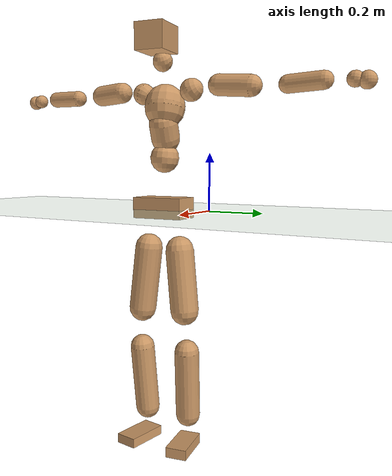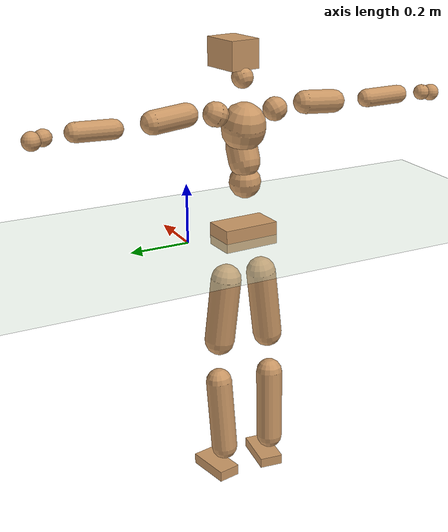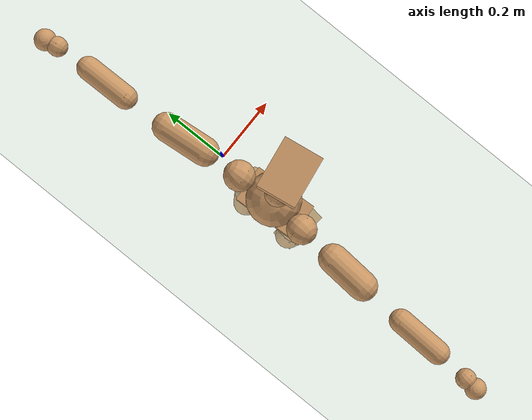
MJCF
<mujoco model="humanoid">
  <compiler coordinate="local" angle="radian"/>
  <default>
    <joint damping="0.0" armature="0.01" stiffness="0.0" limited="true"/>
    <geom conaffinity="1" condim="3" contype="7" margin="0.001" rgba="0.8 0.6 .4 1"/>
  </default>
  <asset>
    <texture type="skybox" builtin="gradient" rgb1=".4 .5 .6" rgb2="0 0 0" width="100" height="100"/>
    <texture builtin="flat" height="1278" mark="cross" markrgb="1 1 1" name="texgeom" random="0.01" rgb1="0.8 0.6 0.4" rgb2="0.8 0.6 0.4" type="cube" width="127"/>
    <texture builtin="checker" height="100" name="texplane" rgb1="0 0 0" rgb2="0.8 0.8 0.8" type="2d" width="100"/>
    <material name="MatPlane" reflectance="0.5" shininess="1" specular="1" texrepeat="60 60" texture="texplane"/>
    <material name="geom" texture="texgeom" texuniform="true"/>
  </asset>
  <worldbody>
    <light cutoff="100" diffuse="1 1 1" dir="-0 0 -1.3" directional="true" exponent="1" pos="0 0 1.3" specular=".1 .1 .1"/>
    <geom conaffinity="1" condim="3" name="floor" pos="0 0 0" rgba="0.8 0.9 0.8 1" size="100 100 .2" type="plane" material="MatPlane"/>
    <body name="Pelvis" pos="-0.0035 -0.1997 0.0163">
      <freejoint name="Pelvis"/>
      <geom type="box" contype="1" conaffinity="1" density="5359.375354" pos="-0.0058 -0.0003 -0.0116" size="0.0557 0.0963 0.0381" quat="0.9996 0.0000 0.0000 0.0287" name="Pelvis"/>
      <body name="L_Hip" pos="-0.0116 0.0591 -0.0846">
        <joint name="L_Hip_x" type="hinge" pos="0 0 0" axis="1 0 0" stiffness="1600" damping="160" armature="0.02" range="-180.0000 180.0000"/>
        <joint name="L_Hip_y" type="hinge" pos="0 0 0" axis="0 1 0" stiffness="1600" damping="160" armature="0.02" range="-180.0000 180.0000"/>
        <joint name="L_Hip_z" type="hinge" pos="0 0 0" axis="0 0 1" stiffness="1600" damping="160" armature="0.02" range="-180.0000 180.0000"/>
        <geom type="capsule" contype="1" conaffinity="1" density="2040.816327" size="0.052" fromto="0.0020 0.0090 -0.0815 0.0073 0.0338 -0.3064" name="L_Hip"/>
        <body name="L_Knee" pos="0.0093 0.0428 -0.3879">
          <joint name="L_Knee_x" type="hinge" pos="0 0 0" axis="1 0 0" stiffness="1600" damping="160" armature="0.02" range="-180.0000 180.0000"/>
          <joint name="L_Knee_y" type="hinge" pos="0 0 0" axis="0 1 0" stiffness="1600" damping="160" armature="0.02" range="-180.0000 180.0000"/>
          <joint name="L_Knee_z" type="hinge" pos="0 0 0" axis="0 0 1" stiffness="1600" damping="160" armature="0.02" range="-180.0000 180.0000"/>
          <geom type="capsule" contype="1" conaffinity="1" density="1234.567901" size="0.0456" fromto="-0.0069 -0.0021 -0.0753 -0.0299 -0.0094 -0.3280" name="L_Knee"/>
          <body name="L_Ankle" pos="-0.0367 -0.0115 -0.4033">
            <joint name="L_Ankle_x" type="hinge" pos="0 0 0" axis="1 0 0" stiffness="1600" damping="160" armature="0.02" range="-180.0000 180.0000"/>
            <joint name="L_Ankle_y" type="hinge" pos="0 0 0" axis="0 1 0" stiffness="1600" damping="160" armature="0.02" range="-180.0000 180.0000"/>
            <joint name="L_Ankle_z" type="hinge" pos="0 0 0" axis="0 0 1" stiffness="1600" damping="160" armature="0.02" range="-180.0000 180.0000"/>
            <geom type="box" contype="1" conaffinity="1" density="999.999994" pos="0.0566 0.0108 -0.0278" size="0.0787 0.0394 0.0189" quat="0.9956 0.0000 0.0000 0.0941" name="L_Ankle"/>
            <body name="L_Toe" pos="0.1132 0.0216 -0.0556">
              <joint name="L_Toe_x" type="hinge" pos="0 0 0" axis="1 0 0" stiffness="1000" damping="100" armature="0.02" range="-180.0000 180.0000"/>
              <joint name="L_Toe_y" type="hinge" pos="0 0 0" axis="0 1 0" stiffness="1000" damping="100" armature="0.02" range="-180.0000 180.0000"/>
              <joint name="L_Toe_z" type="hinge" pos="0 0 0" axis="0 0 1" stiffness="1000" damping="100" armature="0.02" range="-180.0000 180.0000"/>
              <geom type="box" contype="1" conaffinity="1" density="9010953.874028" pos="0.0000 0.0000 0.0287" size="0.0008 0.002 0.001" quat="0.9949 0.0000 0.0000 0.1009" name="L_Toe"/>
            </body>
          </body>
        </body>
      </body>
      <body name="R_Hip" pos="-0.0083 -0.0574 -0.0829">
        <joint name="R_Hip_x" type="hinge" pos="0 0 0" axis="1 0 0" stiffness="1600" damping="160" armature="0.02" range="-180.0000 180.0000"/>
        <joint name="R_Hip_y" type="hinge" pos="0 0 0" axis="0 1 0" stiffness="1600" damping="160" armature="0.02" range="-180.0000 180.0000"/>
        <joint name="R_Hip_z" type="hinge" pos="0 0 0" axis="0 0 1" stiffness="1600" damping="160" armature="0.02" range="-180.0000 180.0000"/>
        <geom type="capsule" contype="1" conaffinity="1" density="2040.816327" size="0.051" fromto="0.0012 -0.0095 -0.0804 0.0048 -0.0376 -0.3185" name="R_Hip"/>
        <body name="R_Knee" pos="0.006 -0.047 -0.3989">
          <joint name="R_Knee_x" type="hinge" pos="0 0 0" axis="1 0 0" stiffness="1600" damping="160" armature="0.02" range="-180.0000 180.0000"/>
          <joint name="R_Knee_y" type="hinge" pos="0 0 0" axis="0 1 0" stiffness="1600" damping="160" armature="0.02" range="-180.0000 180.0000"/>
          <joint name="R_Knee_z" type="hinge" pos="0 0 0" axis="0 0 1" stiffness="1600" damping="160" armature="0.02" range="-180.0000 180.0000"/>
          <geom type="capsule" contype="1" conaffinity="1" density="1234.567901" size="0.0462" fromto="-0.0063 0.0028 -0.0759 -0.0272 0.0119 -0.3260" name="R_Knee"/>
          <body name="R_Ankle" pos="-0.0335 0.0147 -0.4019">
            <joint name="R_Ankle_x" type="hinge" pos="0 0 0" axis="1 0 0" stiffness="1600" damping="160" armature="0.02" range="-180.0000 180.0000"/>
            <joint name="R_Ankle_y" type="hinge" pos="0 0 0" axis="0 1 0" stiffness="1600" damping="160" armature="0.02" range="-180.0000 180.0000"/>
            <joint name="R_Ankle_z" type="hinge" pos="0 0 0" axis="0 0 1" stiffness="1600" damping="160" armature="0.02" range="-180.0000 180.0000"/>
            <geom type="box" contype="1" conaffinity="1" density="1000.000046" pos="0.0574 -0.0069 -0.0234" size="0.0802 0.0413 0.0178" quat="0.9982 0.0000 0.0000 -0.0600" name="R_Ankle"/>
            <body name="R_Toe" pos="0.1148 -0.0138 -0.0468">
              <joint name="R_Toe_x" type="hinge" pos="0 0 0" axis="1 0 0" stiffness="1000" damping="100" armature="0.02" range="-180.0000 180.0000"/>
              <joint name="R_Toe_y" type="hinge" pos="0 0 0" axis="0 1 0" stiffness="1000" damping="100" armature="0.02" range="-180.0000 180.0000"/>
              <joint name="R_Toe_z" type="hinge" pos="0 0 0" axis="0 0 1" stiffness="1000" damping="100" armature="0.02" range="-180.0000 180.0000"/>
              <geom type="box" contype="1" conaffinity="1" density="9425628.369989" pos="0.0000 0.0000 0.0262" size="0.0007 0.002 0.001" quat="0.9987 0.0000 0.0000 -0.0505" name="R_Toe"/>
            </body>
          </body>
        </body>
      </body>
      <body name="Torso" pos="-0.0151 -0.0037 0.098">
        <joint name="Torso_x" type="hinge" pos="0 0 0" axis="1 0 0" stiffness="2000" damping="200" armature="0.02" range="-180.0000 180.0000"/>
        <joint name="Torso_y" type="hinge" pos="0 0 0" axis="0 1 0" stiffness="2000" damping="200" armature="0.02" range="-180.0000 180.0000"/>
        <joint name="Torso_z" type="hinge" pos="0 0 0" axis="0 0 1" stiffness="2000" damping="200" armature="0.02" range="-180.0000 180.0000"/>
        <geom type="capsule" contype="1" conaffinity="1" density="2040.816327" size="0.0531" fromto="-0.0011 0.0028 0.0703 -0.0012 0.0029 0.0723" name="Torso"/>
        <body name="Spine" pos="-0.0023 0.0057 0.1425">
          <joint name="Spine_x" type="hinge" pos="0 0 0" axis="1 0 0" stiffness="2000" damping="200" armature="0.02" range="-180.0000 180.0000"/>
          <joint name="Spine_y" type="hinge" pos="0 0 0" axis="0 1 0" stiffness="2000" damping="200" armature="0.02" range="-180.0000 180.0000"/>
          <joint name="Spine_z" type="hinge" pos="0 0 0" axis="0 0 1" stiffness="2000" damping="200" armature="0.02" range="-180.0000 180.0000"/>
          <geom type="capsule" contype="1" conaffinity="1" density="2040.816327" size="0.0522" fromto="0.0175 0.0022 0.0492 -0.0007 -0.0001 -0.0018" name="Spine"/>
          <body name="Chest" pos="0.0168 0.0021 0.0473">
            <joint name="Chest_x" type="hinge" pos="0 0 0" axis="1 0 0" stiffness="2000" damping="200" armature="0.02" range="-180.0000 180.0000"/>
            <joint name="Chest_y" type="hinge" pos="0 0 0" axis="0 1 0" stiffness="2000" damping="200" armature="0.02" range="-180.0000 180.0000"/>
            <joint name="Chest_z" type="hinge" pos="0 0 0" axis="0 0 1" stiffness="2000" damping="200" armature="0.02" range="-180.0000 180.0000"/>
            <geom type="capsule" contype="1" conaffinity="1" density="2040.816327" size="0.0732" fromto="-0.0144 -0.0016 0.0717 -0.0116 -0.0013 0.0581" name="Chest"/>
            <body name="Neck" pos="-0.0262 -0.0065 0.187">
              <joint name="Neck_x" type="hinge" pos="0 0 0" axis="1 0 0" stiffness="1000" damping="100" armature="0.02" range="-180.0000 180.0000"/>
              <joint name="Neck_y" type="hinge" pos="0 0 0" axis="0 1 0" stiffness="1000" damping="100" armature="0.02" range="-180.0000 180.0000"/>
              <joint name="Neck_z" type="hinge" pos="0 0 0" axis="0 0 1" stiffness="1000" damping="100" armature="0.02" range="-180.0000 180.0000"/>
              <geom type="capsule" contype="1" conaffinity="1" density="1000" size="0.0354" fromto="0.0239 0.0028 0.0342 0.0250 0.0030 0.0358" name="Neck"/>
              <body name="Head" pos="0.0489 0.0058 0.0699">
                <joint name="Head_x" type="hinge" pos="0 0 0" axis="1 0 0" stiffness="1000" damping="100" armature="0.02" range="-180.0000 180.0000"/>
                <joint name="Head_y" type="hinge" pos="0 0 0" axis="0 1 0" stiffness="1000" damping="100" armature="0.02" range="-180.0000 180.0000"/>
                <joint name="Head_z" type="hinge" pos="0 0 0" axis="0 0 1" stiffness="1000" damping="100" armature="0.02" range="-180.0000 180.0000"/>
                <geom type="box" contype="1" conaffinity="1" density="2250.000184" pos="0.0254 0.0039 0.0360" size="0.0676 0.0526 0.0472" quat="0.9971 0.0000 0.0000 0.0761" name="Head"/>
              </body>
            </body>
            <body name="L_Thorax" pos="-0.0238 0.0647 0.1023">
              <joint name="L_Thorax_x" type="hinge" pos="0 0 0" axis="1 0 0" stiffness="1000" damping="100" armature="0.02" range="-180.0000 180.0000"/>
              <joint name="L_Thorax_y" type="hinge" pos="0 0 0" axis="0 1 0" stiffness="1000" damping="100" armature="0.02" range="-180.0000 180.0000"/>
              <joint name="L_Thorax_z" type="hinge" pos="0 0 0" axis="0 0 1" stiffness="1000" damping="100" armature="0.02" range="-180.0000 180.0000"/>
              <geom type="capsule" contype="1" conaffinity="1" density="1000" size="0.041" fromto="-0.0010 0.0369 0.0160 -0.0011 0.0387 0.0168" name="L_Thorax"/>
              <body name="L_Shoulder" pos="-0.0021 0.0756 0.0327">
                <joint name="L_Shoulder_x" type="hinge" pos="0 0 0" axis="1 0 0" stiffness="1000" damping="100" armature="0.02" range="-720.0000 720.0000"/>
                <joint name="L_Shoulder_y" type="hinge" pos="0 0 0" axis="0 1 0" stiffness="1000" damping="100" armature="0.02" range="-720.0000 720.0000"/>
                <joint name="L_Shoulder_z" type="hinge" pos="0 0 0" axis="0 0 1" stiffness="1000" damping="100" armature="0.02" range="-720.0000 720.0000"/>
                <geom type="capsule" contype="1" conaffinity="1" density="1000" size="0.0381" fromto="-0.0068 0.0676 -0.0050 -0.0184 0.1837 -0.0136" name="L_Shoulder"/>
                <body name="L_Elbow" pos="-0.0252 0.2513 -0.0185">
                  <joint name="L_Elbow_x" type="hinge" pos="0 0 0" axis="1 0 0" stiffness="1000" damping="100" armature="0.02" range="-720.0000 720.0000"/>
                  <joint name="L_Elbow_y" type="hinge" pos="0 0 0" axis="0 1 0" stiffness="1000" damping="100" armature="0.02" range="-720.0000 720.0000"/>
                  <joint name="L_Elbow_z" type="hinge" pos="0 0 0" axis="0 0 1" stiffness="1000" damping="100" armature="0.02" range="-720.0000 720.0000"/>
                  <geom type="capsule" contype="1" conaffinity="1" density="1000" size="0.0309" fromto="-0.0007 0.0608 0.0022 -0.0021 0.1808 0.0066" name="L_Elbow"/>
                  <body name="L_Wrist" pos="-0.0029 0.2416 0.0088">
                    <joint name="L_Wrist_x" type="hinge" pos="0 0 0" axis="1 0 0" stiffness="600" damping="60" armature="0.02" range="-180.0000 180.0000"/>
                    <joint name="L_Wrist_y" type="hinge" pos="0 0 0" axis="0 1 0" stiffness="600" damping="60" armature="0.02" range="-180.0000 180.0000"/>
                    <joint name="L_Wrist_z" type="hinge" pos="0 0 0" axis="0 0 1" stiffness="600" damping="60" armature="0.02" range="-180.0000 180.0000"/>
                    <geom type="capsule" contype="1" conaffinity="1" density="1000" size="0.0264" fromto="-0.0061 0.0351 -0.0046 -0.0064 0.0370 -0.0048" name="L_Wrist"/>
                    <body name="L_Hand" pos="-0.0125 0.0721 -0.0094">
                      <joint name="L_Hand_x" type="hinge" pos="0 0 0" axis="1 0 0" stiffness="600" damping="60" armature="0.02" range="-180.0000 180.0000"/>
                      <joint name="L_Hand_y" type="hinge" pos="0 0 0" axis="0 1 0" stiffness="600" damping="60" armature="0.02" range="-180.0000 180.0000"/>
                      <joint name="L_Hand_z" type="hinge" pos="0 0 0" axis="0 0 1" stiffness="600" damping="60" armature="0.02" range="-180.0000 180.0000"/>
                      <geom type="sphere" contype="1" conaffinity="1" density="1000" size="0.0290" pos="0.0000 0.0000 0.0000" name="L_Hand"/>
                    </body>
                  </body>
                </body>
              </body>
            </body>
            <body name="R_Thorax" pos="-0.028 -0.067 0.1001">
              <joint name="R_Thorax_x" type="hinge" pos="0 0 0" axis="1 0 0" stiffness="1000" damping="100" armature="0.02" range="-180.0000 180.0000"/>
              <joint name="R_Thorax_y" type="hinge" pos="0 0 0" axis="0 1 0" stiffness="1000" damping="100" armature="0.02" range="-180.0000 180.0000"/>
              <joint name="R_Thorax_z" type="hinge" pos="0 0 0" axis="0 0 1" stiffness="1000" damping="100" armature="0.02" range="-180.0000 180.0000"/>
              <geom type="capsule" contype="1" conaffinity="1" density="1000" size="0.0394" fromto="-0.0031 -0.0383 0.0153 -0.0032 -0.0401 0.0160" name="R_Thorax"/>
              <body name="R_Shoulder" pos="-0.0063 -0.0784 0.0313">
                <joint name="R_Shoulder_x" type="hinge" pos="0 0 0" axis="1 0 0" stiffness="1000" damping="100" armature="0.02" range="-720.0000 720.0000"/>
                <joint name="R_Shoulder_y" type="hinge" pos="0 0 0" axis="0 1 0" stiffness="1000" damping="100" armature="0.02" range="-720.0000 720.0000"/>
                <joint name="R_Shoulder_z" type="hinge" pos="0 0 0" axis="0 0 1" stiffness="1000" damping="100" armature="0.02" range="-720.0000 720.0000"/>
                <geom type="capsule" contype="1" conaffinity="1" density="1000" size="0.0385" fromto="-0.0047 -0.0682 -0.0035 -0.0118 -0.1710 -0.0088" name="R_Shoulder"/>
                <body name="R_Elbow" pos="-0.0166 -0.2392 -0.0124">
                  <joint name="R_Elbow_x" type="hinge" pos="0 0 0" axis="1 0 0" stiffness="1000" damping="100" armature="0.02" range="-720.0000 720.0000"/>
                  <joint name="R_Elbow_y" type="hinge" pos="0 0 0" axis="0 1 0" stiffness="1000" damping="100" armature="0.02" range="-720.0000 720.0000"/>
                  <joint name="R_Elbow_z" type="hinge" pos="0 0 0" axis="0 0 1" stiffness="1000" damping="100" armature="0.02" range="-720.0000 720.0000"/>
                  <geom type="capsule" contype="1" conaffinity="1" density="1000" size="0.0305" fromto="-0.0021 -0.0604 0.0012 -0.0065 -0.1837 0.0037" name="R_Elbow"/>
                  <body name="R_Wrist" pos="-0.0086 -0.2442 0.0049">
                    <joint name="R_Wrist_x" type="hinge" pos="0 0 0" axis="1 0 0" stiffness="600" damping="60" armature="0.02" range="-180.0000 180.0000"/>
                    <joint name="R_Wrist_y" type="hinge" pos="0 0 0" axis="0 1 0" stiffness="600" damping="60" armature="0.02" range="-180.0000 180.0000"/>
                    <joint name="R_Wrist_z" type="hinge" pos="0 0 0" axis="0 0 1" stiffness="600" damping="60" armature="0.02" range="-180.0000 180.0000"/>
                    <geom type="capsule" contype="1" conaffinity="1" density="1000" size="0.0262" fromto="-0.0042 -0.0341 -0.0031 -0.0045 -0.0361 -0.0032" name="R_Wrist"/>
                    <body name="R_Hand" pos="-0.0087 -0.0701 -0.0063">
                      <joint name="R_Hand_x" type="hinge" pos="0 0 0" axis="1 0 0" stiffness="600" damping="60" armature="0.02" range="-180.0000 180.0000"/>
                      <joint name="R_Hand_y" type="hinge" pos="0 0 0" axis="0 1 0" stiffness="600" damping="60" armature="0.02" range="-180.0000 180.0000"/>
                      <joint name="R_Hand_z" type="hinge" pos="0 0 0" axis="0 0 1" stiffness="600" damping="60" armature="0.02" range="-180.0000 180.0000"/>
                      <geom type="sphere" contype="1" conaffinity="1" density="1000" size="0.0280" pos="0.0000 0.0000 0.0000" name="R_Hand"/>
                    </body>
                  </body>
                </body>
              </body>
            </body>
          </body>
        </body>
      </body>
    </body>
  </worldbody>
  <actuator>
    <motor name="L_Hip_x" joint="L_Hip_x" gear="500"/>
    <motor name="L_Hip_y" joint="L_Hip_y" gear="500"/>
    <motor name="L_Hip_z" joint="L_Hip_z" gear="500"/>
    <motor name="L_Knee_x" joint="L_Knee_x" gear="500"/>
    <motor name="L_Knee_y" joint="L_Knee_y" gear="500"/>
    <motor name="L_Knee_z" joint="L_Knee_z" gear="500"/>
    <motor name="L_Ankle_x" joint="L_Ankle_x" gear="500"/>
    <motor name="L_Ankle_y" joint="L_Ankle_y" gear="500"/>
    <motor name="L_Ankle_z" joint="L_Ankle_z" gear="500"/>
    <motor name="L_Toe_x" joint="L_Toe_x" gear="500"/>
    <motor name="L_Toe_y" joint="L_Toe_y" gear="500"/>
    <motor name="L_Toe_z" joint="L_Toe_z" gear="500"/>
    <motor name="R_Hip_x" joint="R_Hip_x" gear="500"/>
    <motor name="R_Hip_y" joint="R_Hip_y" gear="500"/>
    <motor name="R_Hip_z" joint="R_Hip_z" gear="500"/>
    <motor name="R_Knee_x" joint="R_Knee_x" gear="500"/>
    <motor name="R_Knee_y" joint="R_Knee_y" gear="500"/>
    <motor name="R_Knee_z" joint="R_Knee_z" gear="500"/>
    <motor name="R_Ankle_x" joint="R_Ankle_x" gear="500"/>
    <motor name="R_Ankle_y" joint="R_Ankle_y" gear="500"/>
    <motor name="R_Ankle_z" joint="R_Ankle_z" gear="500"/>
    <motor name="R_Toe_x" joint="R_Toe_x" gear="500"/>
    <motor name="R_Toe_y" joint="R_Toe_y" gear="500"/>
    <motor name="R_Toe_z" joint="R_Toe_z" gear="500"/>
    <motor name="Torso_x" joint="Torso_x" gear="500"/>
    <motor name="Torso_y" joint="Torso_y" gear="500"/>
    <motor name="Torso_z" joint="Torso_z" gear="500"/>
    <motor name="Spine_x" joint="Spine_x" gear="500"/>
    <motor name="Spine_y" joint="Spine_y" gear="500"/>
    <motor name="Spine_z" joint="Spine_z" gear="500"/>
    <motor name="Chest_x" joint="Chest_x" gear="500"/>
    <motor name="Chest_y" joint="Chest_y" gear="500"/>
    <motor name="Chest_z" joint="Chest_z" gear="500"/>
    <motor name="Neck_x" joint="Neck_x" gear="500"/>
    <motor name="Neck_y" joint="Neck_y" gear="500"/>
    <motor name="Neck_z" joint="Neck_z" gear="500"/>
    <motor name="Head_x" joint="Head_x" gear="500"/>
    <motor name="Head_y" joint="Head_y" gear="500"/>
    <motor name="Head_z" joint="Head_z" gear="500"/>
    <motor name="L_Thorax_x" joint="L_Thorax_x" gear="500"/>
    <motor name="L_Thorax_y" joint="L_Thorax_y" gear="500"/>
    <motor name="L_Thorax_z" joint="L_Thorax_z" gear="500"/>
    <motor name="L_Shoulder_x" joint="L_Shoulder_x" gear="500"/>
    <motor name="L_Shoulder_y" joint="L_Shoulder_y" gear="500"/>
    <motor name="L_Shoulder_z" joint="L_Shoulder_z" gear="500"/>
    <motor name="L_Elbow_x" joint="L_Elbow_x" gear="500"/>
    <motor name="L_Elbow_y" joint="L_Elbow_y" gear="500"/>
    <motor name="L_Elbow_z" joint="L_Elbow_z" gear="500"/>
    <motor name="L_Wrist_x" joint="L_Wrist_x" gear="500"/>
    <motor name="L_Wrist_y" joint="L_Wrist_y" gear="500"/>
    <motor name="L_Wrist_z" joint="L_Wrist_z" gear="500"/>
    <motor name="L_Hand_x" joint="L_Hand_x" gear="500"/>
    <motor name="L_Hand_y" joint="L_Hand_y" gear="500"/>
    <motor name="L_Hand_z" joint="L_Hand_z" gear="500"/>
    <motor name="R_Thorax_x" joint="R_Thorax_x" gear="500"/>
    <motor name="R_Thorax_y" joint="R_Thorax_y" gear="500"/>
    <motor name="R_Thorax_z" joint="R_Thorax_z" gear="500"/>
    <motor name="R_Shoulder_x" joint="R_Shoulder_x" gear="500"/>
    <motor name="R_Shoulder_y" joint="R_Shoulder_y" gear="500"/>
    <motor name="R_Shoulder_z" joint="R_Shoulder_z" gear="500"/>
    <motor name="R_Elbow_x" joint="R_Elbow_x" gear="500"/>
    <motor name="R_Elbow_y" joint="R_Elbow_y" gear="500"/>
    <motor name="R_Elbow_z" joint="R_Elbow_z" gear="500"/>
    <motor name="R_Wrist_x" joint="R_Wrist_x" gear="500"/>
    <motor name="R_Wrist_y" joint="R_Wrist_y" gear="500"/>
    <motor name="R_Wrist_z" joint="R_Wrist_z" gear="500"/>
    <motor name="R_Hand_x" joint="R_Hand_x" gear="500"/>
    <motor name="R_Hand_y" joint="R_Hand_y" gear="500"/>
    <motor name="R_Hand_z" joint="R_Hand_z" gear="500"/>
  </actuator>
  <contact>
    <exclude body1="Torso" body2="Chest"/>
    <exclude body1="Head" body2="Chest"/>
    <exclude body1="R_Knee" body2="R_Toe"/>
    <exclude body1="R_Knee" body2="L_Ankle"/>
    <exclude body1="R_Knee" body2="L_Toe"/>
    <exclude body1="L_Knee" body2="L_Toe"/>
    <exclude body1="L_Knee" body2="R_Ankle"/>
    <exclude body1="L_Knee" body2="R_Toe"/>
    <exclude body1="L_Shoulder" body2="Chest"/>
    <exclude body1="R_Shoulder" body2="Chest"/>
  </contact>
  <sensor/>
  <size njmax="700" nconmax="700"/>
</mujoco>
